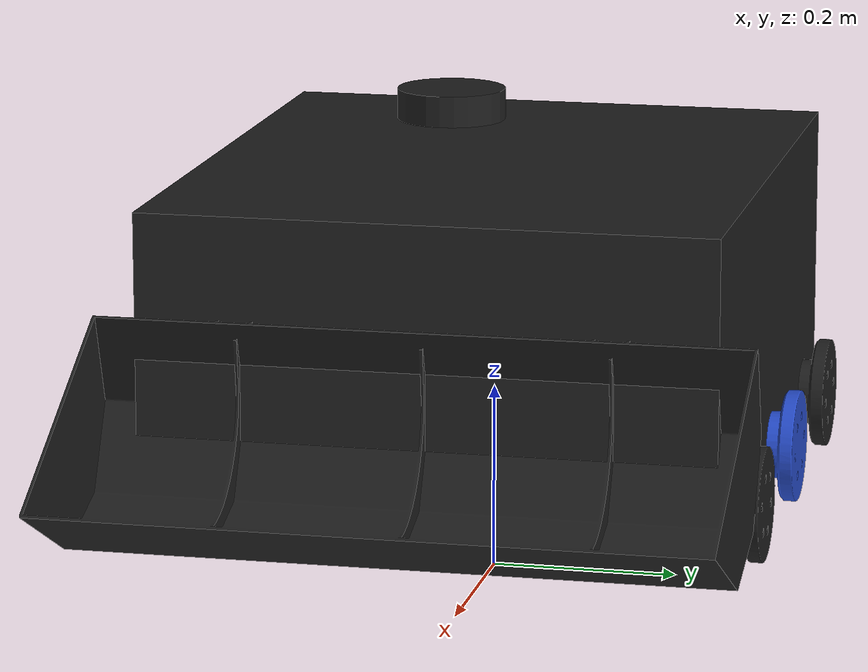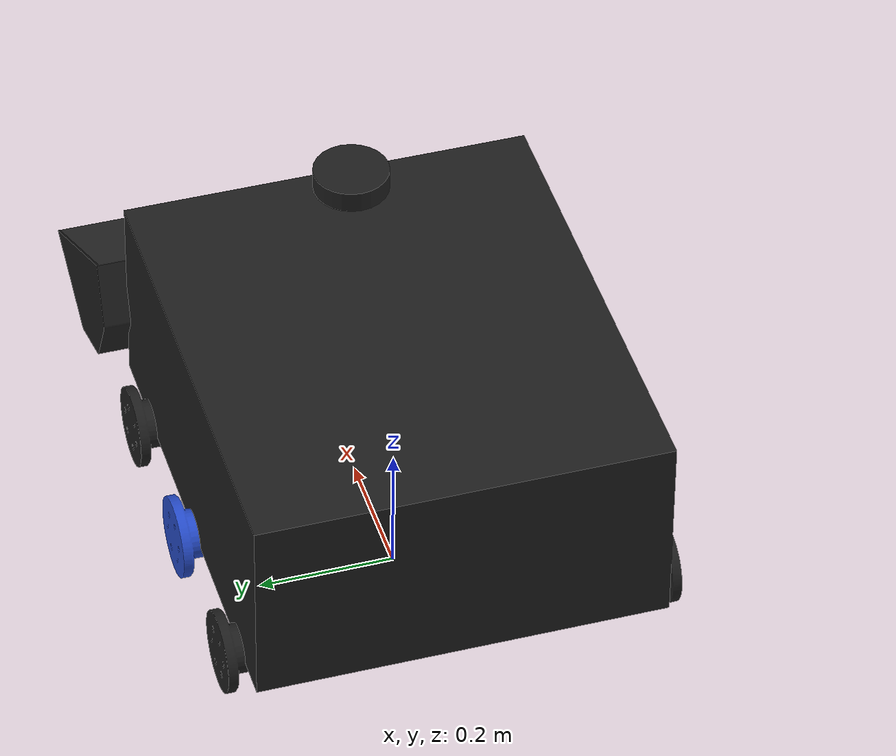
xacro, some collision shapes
<?xml version="1.0" encoding="utf-8"?>
<robot name="robotbody" xmlns:xacro="http://www.ros.org/wiki/xacro">

  <xacro:include filename="$(find mbot_description)/urdf/common_properties.xacro"/>
    <xacro:include filename="$(find mbot_description)/urdf/robotbody.gazebo.xacro"/>
    <link name="base_footprint"/>

    <joint name="base_joint" type="fixed">
      <origin xyz="0 0 0.1" rpy="0 0 0" />
      <parent link="base_footprint"/>
      <child link="base_link" />
    </joint>

  <link name="base_link">
    <inertial>
      <origin
        xyz="0.249258895595124 3.73456791304785E-17 0.375401162790698" rpy="0 0 0" />
       <mass value="1.35088484104347E-05" />
      <inertia
        ixx="0"
        ixy="0"
        ixz="0"
        iyy="0"
        iyz="0"
        izz="0" />
    </inertial>
    <visual>
      <origin xyz="0 0 0" rpy="0 0 0" />
      <geometry>
        <mesh filename="package://mbot_description/meshes/base_link.STL" />
      </geometry>
      <material name="light_black"/>
    </visual>
    <collision>
      <origin
        xyz="0 0 0.2"
        rpy="0 0 0" />
      <geometry>
        <box size="0.7 0.6 0.3"/>
      </geometry>
      <contact>
      <ode>
        <min_depth>0.001</min_depth>
      </ode>
    </contact>
    </collision>
  </link>

  <link name="Right_Wheel">
    <inertial>
      <origin xyz="0.22316 0.2449 0.041366" rpy="0 0 0" />
      <mass value="2.752" />
      <inertia
        ixx="0"
        ixy="0"
        ixz="0"
        iyy="0"
        iyz="0"
        izz="0" />
    </inertial>
    <visual>
      <origin xyz="0 0 0" rpy="0 0 0" />
      <geometry>
        <mesh filename="package://mbot_description/meshes/Right_Wheel.STL" />
      </geometry>
      <material name="blue"/>
    </visual>
    <collision>
      <origin xyz="0 0 0" rpy="0 0 0" />
      <geometry>
        <mesh filename="package://mbot_description/meshes/Right_Wheel.STL" />
      </geometry>
    </collision>
  </link>

  <joint name="Joint_Wheel_Right" type="continuous">
    <origin xyz="-0.016169 -0.2449 0.047662" rpy="0 0 0" />
    <parent
      link="base_link" />
    <child
      link="Right_Wheel" />
    <axis xyz="0 1 0" />
  </joint>

  <link name="Left_Wheel">
    <inertial>
      <origin xyz="0.22316 -0.2449 0.041366" rpy="0 0 0" />
      <mass value="2.752" />
      <inertia
        ixx="0"
        ixy="0"
        ixz="0"
        iyy="0"
        iyz="0"
        izz="0" />
    </inertial>
    <visual>
      <origin xyz="0 0 0" rpy="0 0 0" />
      <geometry>
        <mesh filename="package://mbot_description/meshes/Left_Wheel.STL" />
      </geometry>
      <material name="blue"/>
    </visual>
    <collision>
      <origin xyz="0 0 0" rpy="0 0 0" />
      <geometry>
        <mesh filename="package://mbot_description/meshes/Left_Wheel.STL" />
      </geometry>
    </collision>
  </link>

  <joint name="Joint_Wheel_Left" type="continuous">
    <origin xyz="-0.016169 0.2449 0.047662" rpy="0 0 0" />
    <parent link="base_link" />
    <child link="Left_Wheel" />
    <axis xyz="0 1 0" />
  </joint>

  <!-- Transmission is important to link the joints and the controller -->
  <transmission name="tran1">
	<type>transmission_interface/SimpleTransmission</type>
	<joint name="Joint_Wheel_Right">
		<hardwareInterface>VelocityJointInterface</hardwareInterface>
	</joint>
	<actuator name="joint_motor1">
		<hardwareInterface>VelocityJointInterface</hardwareInterface>
		<mechanicalReduction>1</mechanicalReduction>
	</actuator>
  </transmission>

  <!-- Transmission is important to link the joints and the controller -->
  <transmission name="tran2">
	<type>transmission_interface/SimpleTransmission</type>
	<joint name="Joint_Wheel_Left">
		<hardwareInterface>VelocityJointInterface</hardwareInterface>
	</joint>
	<actuator name="joint_motor2">
		<hardwareInterface>VelocityJointInterface</hardwareInterface>
		<mechanicalReduction>1</mechanicalReduction>
	</actuator>
  </transmission>

<!-- ***************************** Bucket *************************** -->
  <link name="Bucket">
    <inertial>
      <origin xyz="-0.15184 -0.2117 0.07" rpy="0 0 0" />
      <mass value="20.752" />
      <inertia
        ixx="1.4826"
        ixy="-0.000156"
        ixz="-0.10241"
        iyy="1.6106"
        iyz="-1.7706E-05"
        izz="2.7615" />
    </inertial>
    <visual>
      <origin xyz="0 0 0" rpy="0 0 0" />
      <geometry>
        <mesh filename="package://mbot_description/meshes/Bucket.STL" />
      </geometry>
      <material name="black"/>
    </visual>
    <collision>
      <origin xyz="0 0 0" rpy="0 0 0" />
      <geometry>
        <mesh filename="package://mbot_description/meshes/Bucket.STL" />
      </geometry>
    </collision>
  </link>

  <joint name="Joint_Bucket" type="fixed">
    <origin xyz="0.35883098861838 0.2117 0.0476619772367585" rpy="0 0 0" />
    <parent link="base_link" />
    <child link="Bucket" />
    <axis xyz="0 1 0" />
  </joint>

<!-- ************************** Camera ***********************-->
  <link name="camera">
    <visual>
      <origin xyz="-0.089339 0.00035055 -0.24797" rpy="0 0 0" />
      <geometry>
        <mesh filename="package://mbot_description/meshes/Camera.STL" />
      </geometry>
      <material name="blue"/>
    </visual>
    <collision>
      <origin xyz="0 0 0" rpy="0 0 0" />
      <geometry>
        <mesh filename="package://mbot_description/meshes/Camera.STL" />
      </geometry>
    </collision>
  </link>

  <joint name="Joint_Camera" type="fixed">
    <origin xyz="0.296330988618383 -0.000352141499293662 0.336999999183837" rpy="0 0 0" />
    <parent link="base_link" />
    <child link="camera" />
    <axis xyz="0 0 0" />
  </joint>

<!-- ******************************** Lidar ********************** -->
 <link name="lidar">
    <inertial>
      <mass value="0.114" />
      <origin xyz="0 0 0" />
      <inertia ixx="0.001" ixy="0.0" ixz="0.0"
               iyy="0.001" iyz="0.0"
               izz="0.001" />
    </inertial>
    <visual>
      <origin xyz="-2.7756E-17 4.7455E-18 0.035" rpy="0 0 0" />
      <geometry>
        <mesh filename="package://mbot_description/meshes/sensors/lds.stl" scale="0.001 0.001 0.001"/>
      </geometry>
      <material name="dark"/>
    </visual>
    <collision>
      <origin xyz="0 0 0" rpy="0 0 0" />
      <geometry>
	 <cylinder length="0.0315" radius="0.055"/>
      </geometry>
    </collision>
  </link>

  <joint name="Joint_Lidar" type="fixed">
    <origin xyz="0.21533098861838 0 0.45" rpy="0 0 0" />
    <parent link="base_link" />
    <child link="lidar" />
    <axis xyz="0 0 0" />
  </joint>

  <!--  ******************************* IMU ************************* -->

  <joint name="imu_joint" type="fixed">
    <parent link="base_link"/>
    <child link="imu_link"/>
    <origin xyz="-0.032 0 0.068" rpy="0 0 0"/>
  </joint>

  <link name="imu_link"/>

<!--  ******************************* Passive Wheels ********************* -->
  <link name="Right_Front_Wheel">
    <inertial>
      <origin  xyz="-0.016839 0.2459 0.041366" rpy="0 0 0" />
      <mass value="2" />
      <inertia
        ixx="0"
        ixy="0"
        ixz="0"
        iyy="0"
        iyz="0"
        izz="0" />
    </inertial>
    <visual>
      <origin xyz="0 0 0" rpy="0 0 0" />
      <geometry>
        <mesh filename="package://mbot_description/meshes/Right_Front_Wheel.STL" />
      </geometry>
      <material name="light_black"/>
    </visual>
    <collision>
      <origin xyz="0 0 0" rpy="0 0 0" />
      <geometry>
        <mesh filename="package://mbot_description/meshes/Right_Front_Wheel.STL" />
      </geometry>
    </collision>
  </link>

  <joint name="Joint_Wheel_Front_Right" type="continuous">
    <origin xyz="0.22383 -0.2459 0.047662" rpy="0 0 0" />
    <parent link="base_link" />
    <child link="Right_Front_Wheel" />
    <axis xyz="0 1 0" />
  </joint>

  <link name="Right_Back_Wheel">
    <inertial>
      <origin xyz="0.46316 0.246 0.041366" rpy="0 0 0" />
      <mass value="2" />
      <inertia
        ixx="0"
        ixy="0"
        ixz="0"
        iyy="0"
        iyz="0"
        izz="0" />
    </inertial>
    <visual>
      <origin xyz="0 0 0" rpy="0 0 0" />
      <geometry>
        <mesh filename="package://mbot_description/meshes/Right_Back_Wheel.STL" />
      </geometry>
      <material name="light_black"/>
    </visual>
    <collision>
      <origin xyz="0 0 0" rpy="0 0 0" />
      <geometry>
        <mesh filename="package://mbot_description/meshes/Right_Back_Wheel.STL" />
      </geometry>
    </collision>
  </link>

  <joint name="Joint_Wheel_Back_Right" type="continuous">
    <origin xyz="-0.25617 -0.246 0.047662" rpy="0 0 0" />
    <parent link="base_link" />
    <child link="Right_Back_Wheel" />
    <axis xyz="0 1 0" />
  </joint>

  <link name="Left_Front_Wheel">
    <inertial>
      <origin xyz="-0.016839 -0.2459 0.041366" rpy="0 0 0" />
      <mass value="2" />
      <inertia
        ixx="0"
        ixy="0"
        ixz="0"
        iyy="0"
        iyz="0"
        izz="0" />
    </inertial>
    <visual>
      <origin xyz="0 0 0" rpy="0 0 0" />
      <geometry>
        <mesh filename="package://mbot_description/meshes/Left_Front_Wheel.STL" />
      </geometry>
      <material name="light_black"/>
    </visual>
    <collision>
      <origin xyz="0 0 0" rpy="0 0 0" />
      <geometry>
        <mesh filename="package://mbot_description/meshes/Left_Front_Wheel.STL" />
      </geometry>
    </collision>
  </link>

  <joint name="Joint_Wheel_Front_Left" type="continuous">
    <origin xyz="0.22383 0.2459 0.047662" rpy="0 0 0" />
    <parent link="base_link" />
    <child link="Left_Front_Wheel" />
    <axis xyz="0 1 0" />
  </joint>

  <link name="Left_Back_Wheel">
    <inertial>
      <origin xyz="0.46316 -0.2459 0.041366" rpy="0 0 0" />
      <mass value="2" />
      <inertia
        ixx="0"
        ixy="0"
        ixz="0"
        iyy="0"
        iyz="0"
        izz="0" />
    </inertial>
    <visual>
      <origin xyz="0 0 0" rpy="0 0 0" />
      <geometry>
        <mesh filename="package://mbot_description/meshes/Left_Back_Wheel.STL" />
      </geometry>
      <material name="light_black"/>
    </visual>
    <collision>
      <origin xyz="0 0 0" rpy="0 0 0" />
      <geometry>
        <mesh filename="package://mbot_description/meshes/Left_Back_Wheel.STL" />
      </geometry>
    </collision>
  </link>

  <joint name="Joint_Wheel_Back_Left" type="continuous">
    <origin xyz="-0.25617 0.2459 0.047662" rpy="0 0 0" />
    <parent link="base_link" />
    <child link="Left_Back_Wheel" />
    <axis xyz="0 1 0" />
  </joint>
</robot>
